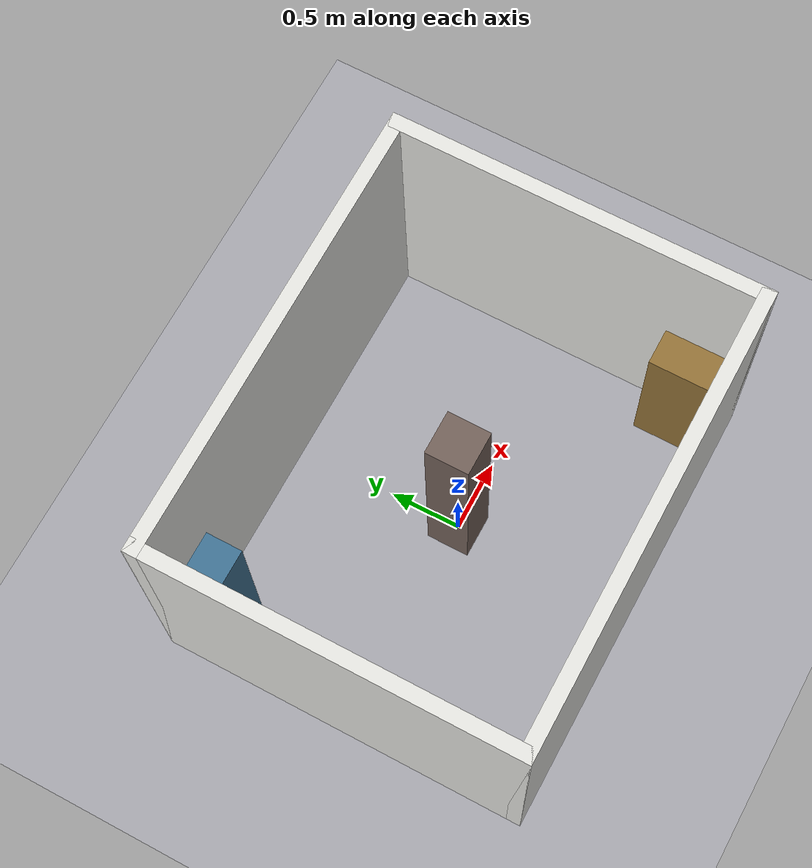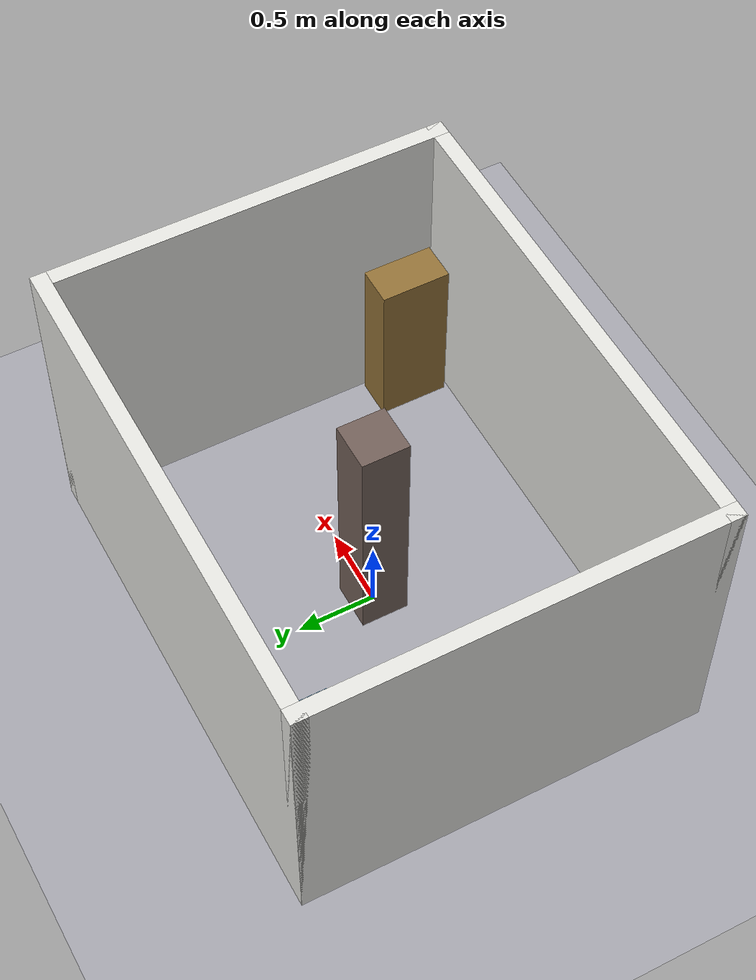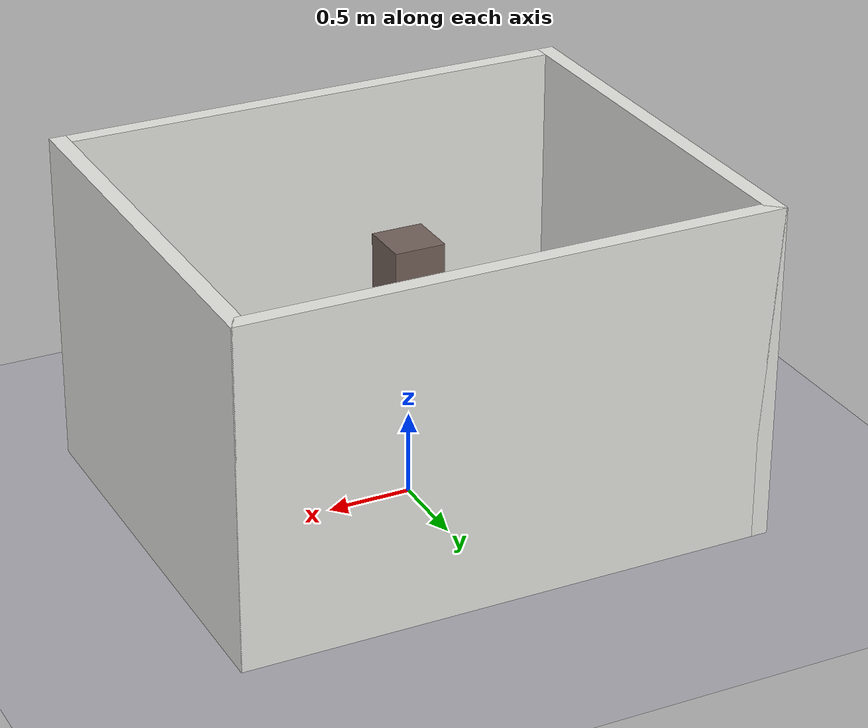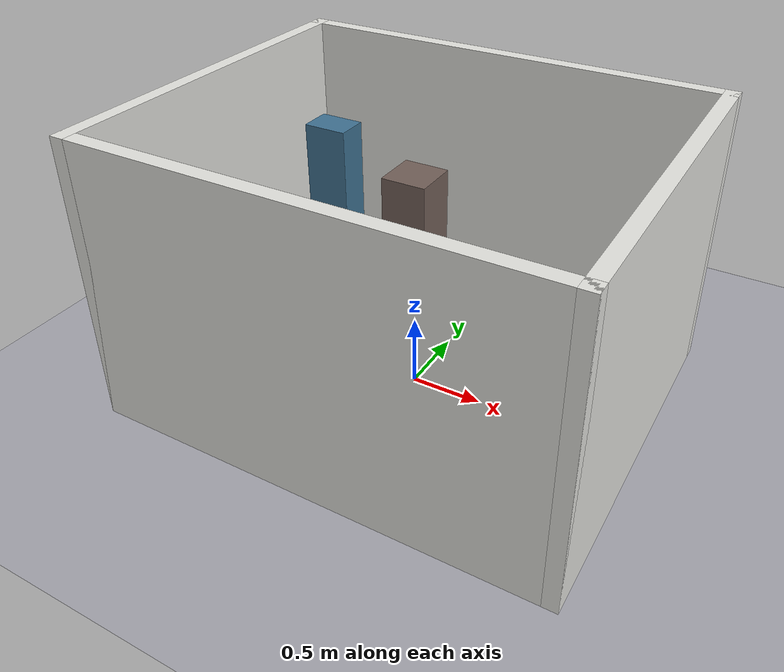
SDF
<?xml version="1.0" ?>
<sdf version="1.9">
  <world name="tetra_loop_room">

    <physics name="1ms" type="ignored">
      <max_step_size>0.001</max_step_size>
      <real_time_factor>1.0</real_time_factor>
    </physics>

    <plugin filename="ignition-gazebo-physics-system"
            name="ignition::gazebo::systems::Physics"/>
    <plugin filename="ignition-gazebo-user-commands-system"
            name="ignition::gazebo::systems::UserCommands"/>
    <plugin filename="ignition-gazebo-scene-broadcaster-system"
            name="ignition::gazebo::systems::SceneBroadcaster"/>
    <plugin filename="ignition-gazebo-contact-system"
            name="ignition::gazebo::systems::Contact"/>

    <gravity>0 0 -9.8</gravity>

    <scene>
      <ambient>0.6 0.6 0.6 1</ambient>
      <background>0.75 0.80 0.86 1</background>
      <grid>false</grid>
    </scene>

    <light type="directional" name="sun">
      <cast_shadows>true</cast_shadows>
      <pose>0 0 8 0 0 0</pose>
      <diffuse>0.9 0.9 0.9 1</diffuse>
      <specular>0.2 0.2 0.2 1</specular>
      <direction>-0.4 0.3 -0.9</direction>
    </light>

    <model name="ground_plane">
      <static>true</static>
      <link name="link">
        <collision name="collision">
          <geometry><plane><normal>0 0 1</normal><size>20 20</size></plane></geometry>
        </collision>
        <visual name="visual">
          <geometry><plane><normal>0 0 1</normal><size>20 20</size></plane></geometry>
          <material>
            <ambient>0.55 0.55 0.58 1</ambient>
            <diffuse>0.65 0.65 0.68 1</diffuse>
          </material>
        </visual>
      </link>
    </model>

    <model name="room">
      <static>true</static>
      <link name="walls">

        <collision name="wall_xpos_collision">
          <pose>1.55 0 1.0 0 0 0</pose>
          <geometry><box><size>0.1 2.6 2.0</size></box></geometry>
        </collision>
        <visual name="wall_xpos_visual">
          <pose>1.55 0 1.0 0 0 0</pose>
          <geometry><box><size>0.1 2.6 2.0</size></box></geometry>
          <material><ambient>0.8 0.8 0.78 1</ambient><diffuse>0.9 0.9 0.88 1</diffuse></material>
        </visual>

        <collision name="wall_xneg_collision">
          <pose>-1.55 0 1.0 0 0 0</pose>
          <geometry><box><size>0.1 2.6 2.0</size></box></geometry>
        </collision>
        <visual name="wall_xneg_visual">
          <pose>-1.55 0 1.0 0 0 0</pose>
          <geometry><box><size>0.1 2.6 2.0</size></box></geometry>
          <material><ambient>0.8 0.8 0.78 1</ambient><diffuse>0.9 0.9 0.88 1</diffuse></material>
        </visual>

        <collision name="wall_ypos_collision">
          <pose>0 1.25 1.0 0 0 0</pose>
          <geometry><box><size>3.2 0.1 2.0</size></box></geometry>
        </collision>
        <visual name="wall_ypos_visual">
          <pose>0 1.25 1.0 0 0 0</pose>
          <geometry><box><size>3.2 0.1 2.0</size></box></geometry>
          <material><ambient>0.8 0.8 0.78 1</ambient><diffuse>0.9 0.9 0.88 1</diffuse></material>
        </visual>

        <collision name="wall_yneg_collision">
          <pose>0 -1.25 1.0 0 0 0</pose>
          <geometry><box><size>3.2 0.1 2.0</size></box></geometry>
        </collision>
        <visual name="wall_yneg_visual">
          <pose>0 -1.25 1.0 0 0 0</pose>
          <geometry><box><size>3.2 0.1 2.0</size></box></geometry>
          <material><ambient>0.8 0.8 0.78 1</ambient><diffuse>0.9 0.9 0.88 1</diffuse></material>
        </visual>

      </link>
    </model>

    <!-- Centre pillar. 0.30 m square leaves a 1.05 m gap to the long walls and
         1.35 m to the short ones - comfortable for a 0.43 m wide robot to lap
         under teleop. -->
    <model name="centre_pillar">
      <static>true</static>
      <pose>0 0 0.8 0 0 0</pose>
      <link name="link">
        <collision name="collision">
          <geometry><box><size>0.30 0.30 1.6</size></box></geometry>
        </collision>
        <visual name="visual">
          <geometry><box><size>0.30 0.30 1.6</size></box></geometry>
          <material><ambient>0.35 0.30 0.28 1</ambient><diffuse>0.45 0.38 0.35 1</diffuse></material>
        </visual>
      </link>
    </model>

    <!-- Asymmetry breakers: different sizes, non-opposite corners. -->
    <model name="corner_block_a">
      <static>true</static>
      <pose>-1.30 1.00 0.65 0 0 0</pose>
      <link name="link">
        <collision name="collision">
          <geometry><box><size>0.35 0.25 1.3</size></box></geometry>
        </collision>
        <visual name="visual">
          <geometry><box><size>0.35 0.25 1.3</size></box></geometry>
          <material><ambient>0.20 0.35 0.45 1</ambient><diffuse>0.25 0.45 0.58 1</diffuse></material>
        </visual>
      </link>
    </model>

    <model name="corner_block_b">
      <static>true</static>
      <pose>1.35 -0.95 0.55 0 0 0</pose>
      <link name="link">
        <collision name="collision">
          <geometry><box><size>0.25 0.45 1.1</size></box></geometry>
        </collision>
        <visual name="visual">
          <geometry><box><size>0.25 0.45 1.1</size></box></geometry>
          <material><ambient>0.45 0.35 0.18 1</ambient><diffuse>0.58 0.45 0.22 1</diffuse></material>
        </visual>
      </link>
    </model>

  </world>
</sdf>
